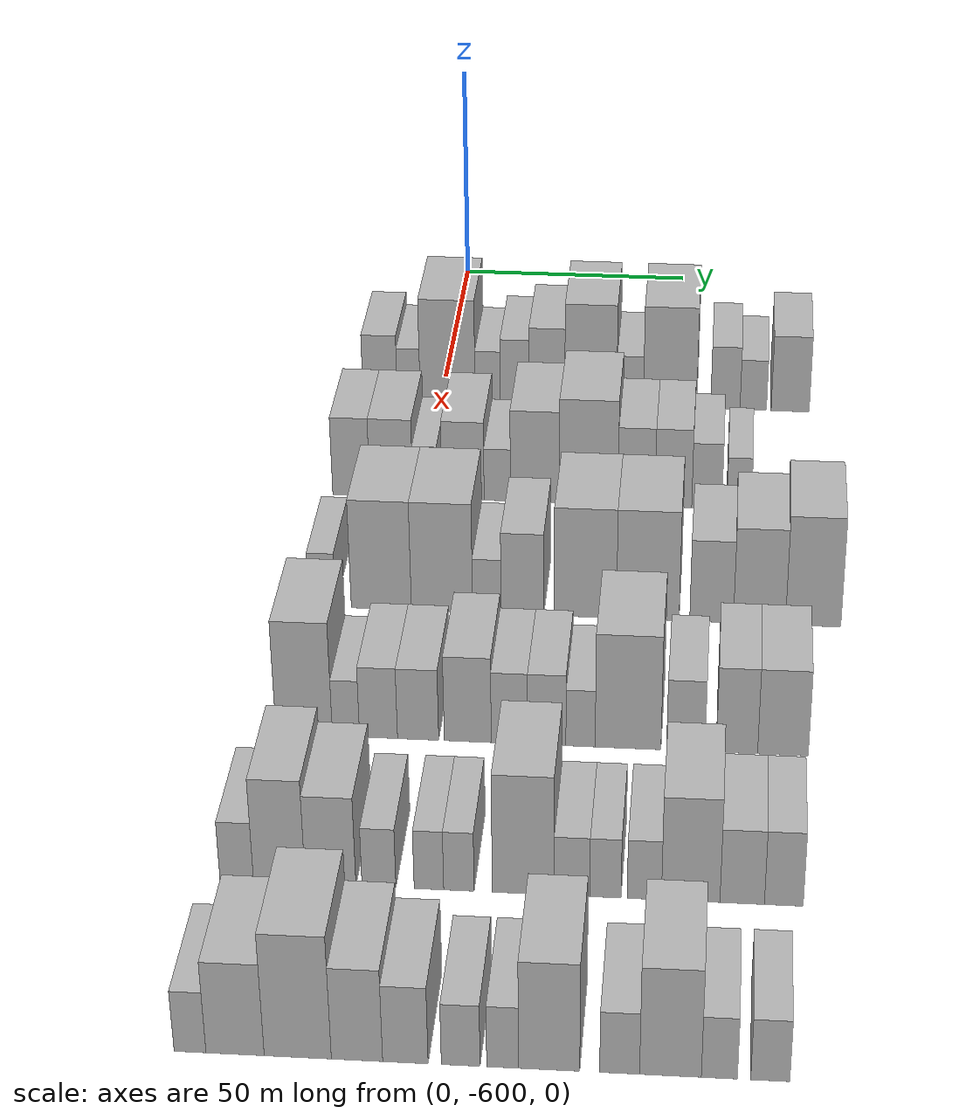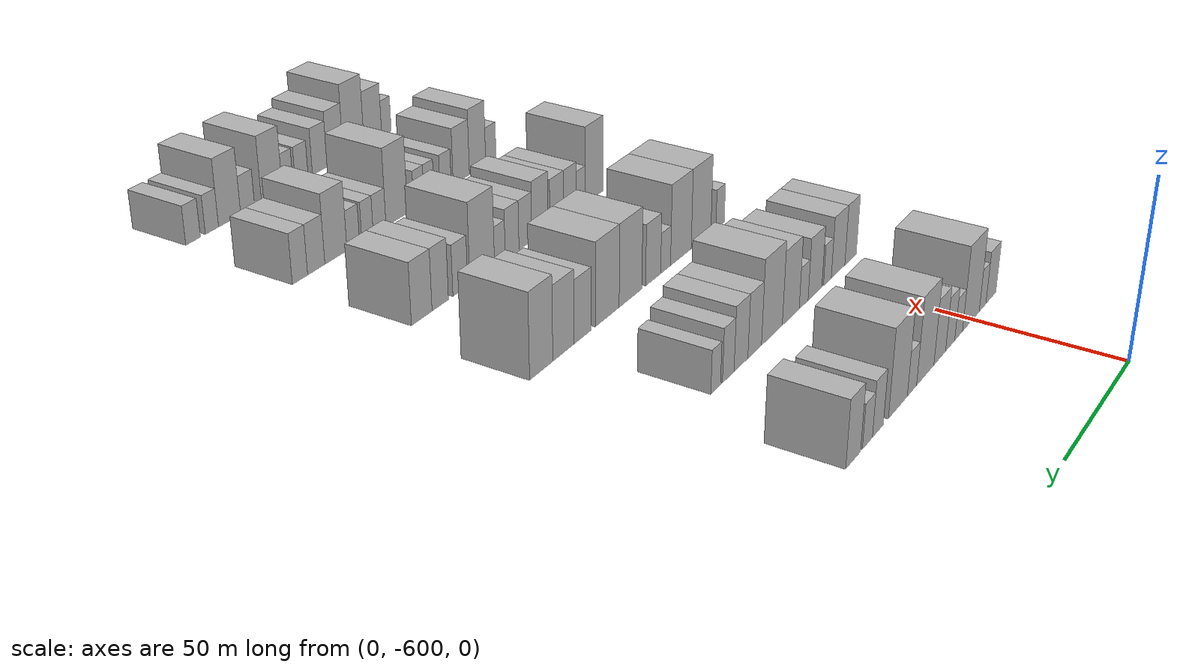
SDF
<sdf version="1.6">
 <world name="default">
  <model name="building_1">
   <static>1</static>
   <pose>50.0000 -613.3078 0 0.000000 0.000000 0.000000</pose>
   <link name="link">
    <pose>0 0 7.50 0 0 0</pose>
    <collision name="collision"><geometry><box><size>20.0000 7.3845 15.0000</size></box></geometry></collision>
    <visual name="visual">
     <cast_shadows>0</cast_shadows>
     <geometry><box><size>20.0000 7.3845 15.0000</size></box></geometry>
     <material>
      <script>
       <uri>model://HANNAS_wall/materials/scripts</uri>
       <uri>model://HANNAS_wall/materials/textures</uri>
       <name>vrc/HANNAS_wall</name>
      </script>
     </material>
    </visual>
   </link>
  </model>
  <model name="building_2">
   <static>1</static>
   <pose>50.0000 -607.1452 0 0.000000 0.000000 0.000000</pose>
   <link name="link">
    <pose>0 0 6.00 0 0 0</pose>
    <collision name="collision"><geometry><box><size>20.0000 4.9407 12.0000</size></box></geometry></collision>
    <visual name="visual">
     <cast_shadows>0</cast_shadows>
     <geometry><box><size>20.0000 4.9407 12.0000</size></box></geometry>
     <material>
      <script>
       <uri>model://HANNAS_wall/materials/scripts</uri>
       <uri>model://HANNAS_wall/materials/textures</uri>
       <name>vrc/HANNAS_wall</name>
      </script>
     </material>
    </visual>
   </link>
  </model>
  <model name="building_3">
   <static>1</static>
   <pose>50.0000 -598.7506 0 0.000000 0.000000 0.000000</pose>
   <link name="link">
    <pose>0 0 12.00 0 0 0</pose>
    <collision name="collision"><geometry><box><size>20.0000 11.8484 24.0000</size></box></geometry></collision>
    <visual name="visual">
     <cast_shadows>0</cast_shadows>
     <geometry><box><size>20.0000 11.8484 24.0000</size></box></geometry>
     <material>
      <script>
       <uri>model://HANNAS_wall/materials/scripts</uri>
       <uri>model://HANNAS_wall/materials/textures</uri>
       <name>vrc/HANNAS_wall</name>
      </script>
     </material>
    </visual>
   </link>
  </model>
  <model name="building_4">
   <static>1</static>
   <pose>50.0000 -590.1358 0 0.000000 0.000000 0.000000</pose>
   <link name="link">
    <pose>0 0 6.00 0 0 0</pose>
    <collision name="collision"><geometry><box><size>20.0000 5.3811 12.0000</size></box></geometry></collision>
    <visual name="visual">
     <cast_shadows>0</cast_shadows>
     <geometry><box><size>20.0000 5.3811 12.0000</size></box></geometry>
     <material>
      <script>
       <uri>model://HANNAS_wall/materials/scripts</uri>
       <uri>model://HANNAS_wall/materials/textures</uri>
       <name>vrc/HANNAS_wall</name>
      </script>
     </material>
    </visual>
   </link>
  </model>
  <model name="building_5">
   <static>1</static>
   <pose>50.0000 -584.3624 0 0.000000 0.000000 0.000000</pose>
   <link name="link">
    <pose>0 0 7.50 0 0 0</pose>
    <collision name="collision"><geometry><box><size>20.0000 6.1656 15.0000</size></box></geometry></collision>
    <visual name="visual">
     <cast_shadows>0</cast_shadows>
     <geometry><box><size>20.0000 6.1656 15.0000</size></box></geometry>
     <material>
      <script>
       <uri>model://HANNAS_wall/materials/scripts</uri>
       <uri>model://HANNAS_wall/materials/textures</uri>
       <name>vrc/HANNAS_wall</name>
      </script>
     </material>
    </visual>
   </link>
  </model>
  <model name="building_6">
   <static>1</static>
   <pose>50.0000 -577.4387 0 0.000000 0.000000 0.000000</pose>
   <link name="link">
    <pose>0 0 9.00 0 0 0</pose>
    <collision name="collision"><geometry><box><size>20.0000 7.6817 18.0000</size></box></geometry></collision>
    <visual name="visual">
     <cast_shadows>0</cast_shadows>
     <geometry><box><size>20.0000 7.6817 18.0000</size></box></geometry>
     <material>
      <script>
       <uri>model://HANNAS_wall/materials/scripts</uri>
       <uri>model://HANNAS_wall/materials/textures</uri>
       <name>vrc/HANNAS_wall</name>
      </script>
     </material>
    </visual>
   </link>
  </model>
  <model name="building_7">
   <static>1</static>
   <pose>50.0000 -568.0621 0 0.000000 0.000000 0.000000</pose>
   <link name="link">
    <pose>0 0 12.00 0 0 0</pose>
    <collision name="collision"><geometry><box><size>20.0000 11.0716 24.0000</size></box></geometry></collision>
    <visual name="visual">
     <cast_shadows>0</cast_shadows>
     <geometry><box><size>20.0000 11.0716 24.0000</size></box></geometry>
     <material>
      <script>
       <uri>model://HANNAS_wall/materials/scripts</uri>
       <uri>model://HANNAS_wall/materials/textures</uri>
       <name>vrc/HANNAS_wall</name>
      </script>
     </material>
    </visual>
   </link>
  </model>
  <model name="building_8">
   <static>1</static>
   <pose>50.0000 -559.6764 0 0.000000 0.000000 0.000000</pose>
   <link name="link">
    <pose>0 0 6.00 0 0 0</pose>
    <collision name="collision"><geometry><box><size>20.0000 5.6997 12.0000</size></box></geometry></collision>
    <visual name="visual">
     <cast_shadows>0</cast_shadows>
     <geometry><box><size>20.0000 5.6997 12.0000</size></box></geometry>
     <material>
      <script>
       <uri>model://HANNAS_wall/materials/scripts</uri>
       <uri>model://HANNAS_wall/materials/textures</uri>
       <name>vrc/HANNAS_wall</name>
      </script>
     </material>
    </visual>
   </link>
  </model>
  <model name="building_9">
   <static>1</static>
   <pose>50.0000 -551.1510 0 0.000000 0.000000 0.000000</pose>
   <link name="link">
    <pose>0 0 12.00 0 0 0</pose>
    <collision name="collision"><geometry><box><size>20.0000 11.3511 24.0000</size></box></geometry></collision>
    <visual name="visual">
     <cast_shadows>0</cast_shadows>
     <geometry><box><size>20.0000 11.3511 24.0000</size></box></geometry>
     <material>
      <script>
       <uri>model://HANNAS_wall/materials/scripts</uri>
       <uri>model://HANNAS_wall/materials/textures</uri>
       <name>vrc/HANNAS_wall</name>
      </script>
     </material>
    </visual>
   </link>
  </model>
  <model name="building_10">
   <static>1</static>
   <pose>50.0000 -539.3572 0 0.000000 0.000000 0.000000</pose>
   <link name="link">
    <pose>0 0 7.50 0 0 0</pose>
    <collision name="collision"><geometry><box><size>20.0000 6.2365 15.0000</size></box></geometry></collision>
    <visual name="visual">
     <cast_shadows>0</cast_shadows>
     <geometry><box><size>20.0000 6.2365 15.0000</size></box></geometry>
     <material>
      <script>
       <uri>model://HANNAS_wall/materials/scripts</uri>
       <uri>model://HANNAS_wall/materials/textures</uri>
       <name>vrc/HANNAS_wall</name>
      </script>
     </material>
    </visual>
   </link>
  </model>
  <model name="building_11">
   <static>1</static>
   <pose>50.0000 -533.4282 0 0.000000 0.000000 0.000000</pose>
   <link name="link">
    <pose>0 0 6.00 0 0 0</pose>
    <collision name="collision"><geometry><box><size>20.0000 5.6216 12.0000</size></box></geometry></collision>
    <visual name="visual">
     <cast_shadows>0</cast_shadows>
     <geometry><box><size>20.0000 5.6216 12.0000</size></box></geometry>
     <material>
      <script>
       <uri>model://HANNAS_wall/materials/scripts</uri>
       <uri>model://HANNAS_wall/materials/textures</uri>
       <name>vrc/HANNAS_wall</name>
      </script>
     </material>
    </visual>
   </link>
  </model>
  <model name="building_12">
   <static>1</static>
   <pose>50.0000 -525.5855 0 0.000000 0.000000 0.000000</pose>
   <link name="link">
    <pose>0 0 9.00 0 0 0</pose>
    <collision name="collision"><geometry><box><size>20.0000 8.0637 18.0000</size></box></geometry></collision>
    <visual name="visual">
     <cast_shadows>0</cast_shadows>
     <geometry><box><size>20.0000 8.0637 18.0000</size></box></geometry>
     <material>
      <script>
       <uri>model://HANNAS_wall/materials/scripts</uri>
       <uri>model://HANNAS_wall/materials/textures</uri>
       <name>vrc/HANNAS_wall</name>
      </script>
     </material>
    </visual>
   </link>
  </model>
  <model name="building_149">
   <static>1</static>
   <pose>90.0000 -614.2257 0 0.000000 0.000000 0.000000</pose>
   <link name="link">
    <pose>0 0 9.00 0 0 0</pose>
    <collision name="collision"><geometry><box><size>20.0000 7.5487 18.0000</size></box></geometry></collision>
    <visual name="visual">
     <cast_shadows>0</cast_shadows>
     <geometry><box><size>20.0000 7.5487 18.0000</size></box></geometry>
     <material>
      <script>
       <uri>model://HANNAS_wall/materials/scripts</uri>
       <uri>model://HANNAS_wall/materials/textures</uri>
       <name>vrc/HANNAS_wall</name>
      </script>
     </material>
    </visual>
   </link>
  </model>
  <model name="building_150">
   <static>1</static>
   <pose>90.0000 -606.0872 0 0.000000 0.000000 0.000000</pose>
   <link name="link">
    <pose>0 0 9.00 0 0 0</pose>
    <collision name="collision"><geometry><box><size>20.0000 8.7281 18.0000</size></box></geometry></collision>
    <visual name="visual">
     <cast_shadows>0</cast_shadows>
     <geometry><box><size>20.0000 8.7281 18.0000</size></box></geometry>
     <material>
      <script>
       <uri>model://HANNAS_wall/materials/scripts</uri>
       <uri>model://HANNAS_wall/materials/textures</uri>
       <name>vrc/HANNAS_wall</name>
      </script>
     </material>
    </visual>
   </link>
  </model>
  <model name="building_151">
   <static>1</static>
   <pose>90.0000 -599.2613 0 0.000000 0.000000 0.000000</pose>
   <link name="link">
    <pose>0 0 6.00 0 0 0</pose>
    <collision name="collision"><geometry><box><size>20.0000 4.9238 12.0000</size></box></geometry></collision>
    <visual name="visual">
     <cast_shadows>0</cast_shadows>
     <geometry><box><size>20.0000 4.9238 12.0000</size></box></geometry>
     <material>
      <script>
       <uri>model://HANNAS_wall/materials/scripts</uri>
       <uri>model://HANNAS_wall/materials/textures</uri>
       <name>vrc/HANNAS_wall</name>
      </script>
     </material>
    </visual>
   </link>
  </model>
  <model name="building_152">
   <static>1</static>
   <pose>90.0000 -591.5511 0 0.000000 0.000000 0.000000</pose>
   <link name="link">
    <pose>0 0 9.00 0 0 0</pose>
    <collision name="collision"><geometry><box><size>20.0000 8.4965 18.0000</size></box></geometry></collision>
    <visual name="visual">
     <cast_shadows>0</cast_shadows>
     <geometry><box><size>20.0000 8.4965 18.0000</size></box></geometry>
     <material>
      <script>
       <uri>model://HANNAS_wall/materials/scripts</uri>
       <uri>model://HANNAS_wall/materials/textures</uri>
       <name>vrc/HANNAS_wall</name>
      </script>
     </material>
    </visual>
   </link>
  </model>
  <model name="building_153">
   <static>1</static>
   <pose>90.0000 -584.6362 0 0.000000 0.000000 0.000000</pose>
   <link name="link">
    <pose>0 0 6.00 0 0 0</pose>
    <collision name="collision"><geometry><box><size>20.0000 5.3332 12.0000</size></box></geometry></collision>
    <visual name="visual">
     <cast_shadows>0</cast_shadows>
     <geometry><box><size>20.0000 5.3332 12.0000</size></box></geometry>
     <material>
      <script>
       <uri>model://HANNAS_wall/materials/scripts</uri>
       <uri>model://HANNAS_wall/materials/textures</uri>
       <name>vrc/HANNAS_wall</name>
      </script>
     </material>
    </visual>
   </link>
  </model>
  <model name="building_154">
   <static>1</static>
   <pose>90.0000 -577.0335 0 0.000000 0.000000 0.000000</pose>
   <link name="link">
    <pose>0 0 10.50 0 0 0</pose>
    <collision name="collision"><geometry><box><size>20.0000 9.8722 21.0000</size></box></geometry></collision>
    <visual name="visual">
     <cast_shadows>0</cast_shadows>
     <geometry><box><size>20.0000 9.8722 21.0000</size></box></geometry>
     <material>
      <script>
       <uri>model://HANNAS_wall/materials/scripts</uri>
       <uri>model://HANNAS_wall/materials/textures</uri>
       <name>vrc/HANNAS_wall</name>
      </script>
     </material>
    </visual>
   </link>
  </model>
  <model name="building_155">
   <static>1</static>
   <pose>90.0000 -566.2191 0 0.000000 0.000000 0.000000</pose>
   <link name="link">
    <pose>0 0 12.00 0 0 0</pose>
    <collision name="collision"><geometry><box><size>20.0000 11.7567 24.0000</size></box></geometry></collision>
    <visual name="visual">
     <cast_shadows>0</cast_shadows>
     <geometry><box><size>20.0000 11.7567 24.0000</size></box></geometry>
     <material>
      <script>
       <uri>model://HANNAS_wall/materials/scripts</uri>
       <uri>model://HANNAS_wall/materials/textures</uri>
       <name>vrc/HANNAS_wall</name>
      </script>
     </material>
    </visual>
   </link>
  </model>
  <model name="building_156">
   <static>1</static>
   <pose>90.0000 -556.6262 0 0.000000 0.000000 0.000000</pose>
   <link name="link">
    <pose>0 0 9.00 0 0 0</pose>
    <collision name="collision"><geometry><box><size>20.0000 7.4292 18.0000</size></box></geometry></collision>
    <visual name="visual">
     <cast_shadows>0</cast_shadows>
     <geometry><box><size>20.0000 7.4292 18.0000</size></box></geometry>
     <material>
      <script>
       <uri>model://HANNAS_wall/materials/scripts</uri>
       <uri>model://HANNAS_wall/materials/textures</uri>
       <name>vrc/HANNAS_wall</name>
      </script>
     </material>
    </visual>
   </link>
  </model>
  <model name="building_157">
   <static>1</static>
   <pose>90.0000 -549.2320 0 0.000000 0.000000 0.000000</pose>
   <link name="link">
    <pose>0 0 9.00 0 0 0</pose>
    <collision name="collision"><geometry><box><size>20.0000 7.3592 18.0000</size></box></geometry></collision>
    <visual name="visual">
     <cast_shadows>0</cast_shadows>
     <geometry><box><size>20.0000 7.3592 18.0000</size></box></geometry>
     <material>
      <script>
       <uri>model://HANNAS_wall/materials/scripts</uri>
       <uri>model://HANNAS_wall/materials/textures</uri>
       <name>vrc/HANNAS_wall</name>
      </script>
     </material>
    </visual>
   </link>
  </model>
  <model name="building_158">
   <static>1</static>
   <pose>90.0000 -542.5500 0 0.000000 0.000000 0.000000</pose>
   <link name="link">
    <pose>0 0 7.50 0 0 0</pose>
    <collision name="collision"><geometry><box><size>20.0000 6.0047 15.0000</size></box></geometry></collision>
    <visual name="visual">
     <cast_shadows>0</cast_shadows>
     <geometry><box><size>20.0000 6.0047 15.0000</size></box></geometry>
     <material>
      <script>
       <uri>model://HANNAS_wall/materials/scripts</uri>
       <uri>model://HANNAS_wall/materials/textures</uri>
       <name>vrc/HANNAS_wall</name>
      </script>
     </material>
    </visual>
   </link>
  </model>
  <model name="building_159">
   <static>1</static>
   <pose>90.0000 -536.1082 0 0.000000 0.000000 0.000000</pose>
   <link name="link">
    <pose>0 0 6.00 0 0 0</pose>
    <collision name="collision"><geometry><box><size>20.0000 4.8790 12.0000</size></box></geometry></collision>
    <visual name="visual">
     <cast_shadows>0</cast_shadows>
     <geometry><box><size>20.0000 4.8790 12.0000</size></box></geometry>
     <material>
      <script>
       <uri>model://HANNAS_wall/materials/scripts</uri>
       <uri>model://HANNAS_wall/materials/textures</uri>
       <name>vrc/HANNAS_wall</name>
      </script>
     </material>
    </visual>
   </link>
  </model>
  <model name="building_281">
   <static>1</static>
   <pose>130.0000 -614.4618 0 0.000000 0.000000 0.000000</pose>
   <link name="link">
    <pose>0 0 6.00 0 0 0</pose>
    <collision name="collision"><geometry><box><size>20.0000 5.0765 12.0000</size></box></geometry></collision>
    <visual name="visual">
     <cast_shadows>0</cast_shadows>
     <geometry><box><size>20.0000 5.0765 12.0000</size></box></geometry>
     <material>
      <script>
       <uri>model://HANNAS_wall/materials/scripts</uri>
       <uri>model://HANNAS_wall/materials/textures</uri>
       <name>vrc/HANNAS_wall</name>
      </script>
     </material>
    </visual>
   </link>
  </model>
  <model name="building_282">
   <static>1</static>
   <pose>130.0000 -603.2040 0 0.000000 0.000000 0.000000</pose>
   <link name="link">
    <pose>0 0 12.00 0 0 0</pose>
    <collision name="collision"><geometry><box><size>20.0000 11.4391 24.0000</size></box></geometry></collision>
    <visual name="visual">
     <cast_shadows>0</cast_shadows>
     <geometry><box><size>20.0000 11.4391 24.0000</size></box></geometry>
     <material>
      <script>
       <uri>model://HANNAS_wall/materials/scripts</uri>
       <uri>model://HANNAS_wall/materials/textures</uri>
       <name>vrc/HANNAS_wall</name>
      </script>
     </material>
    </visual>
   </link>
  </model>
  <model name="building_283">
   <static>1</static>
   <pose>130.0000 -591.6767 0 0.000000 0.000000 0.000000</pose>
   <link name="link">
    <pose>0 0 12.00 0 0 0</pose>
    <collision name="collision"><geometry><box><size>20.0000 11.6155 24.0000</size></box></geometry></collision>
    <visual name="visual">
     <cast_shadows>0</cast_shadows>
     <geometry><box><size>20.0000 11.6155 24.0000</size></box></geometry>
     <material>
      <script>
       <uri>model://HANNAS_wall/materials/scripts</uri>
       <uri>model://HANNAS_wall/materials/textures</uri>
       <name>vrc/HANNAS_wall</name>
      </script>
     </material>
    </visual>
   </link>
  </model>
  <model name="building_284">
   <static>1</static>
   <pose>130.0000 -583.1731 0 0.000000 0.000000 0.000000</pose>
   <link name="link">
    <pose>0 0 6.00 0 0 0</pose>
    <collision name="collision"><geometry><box><size>20.0000 5.3916 12.0000</size></box></geometry></collision>
    <visual name="visual">
     <cast_shadows>0</cast_shadows>
     <geometry><box><size>20.0000 5.3916 12.0000</size></box></geometry>
     <material>
      <script>
       <uri>model://HANNAS_wall/materials/scripts</uri>
       <uri>model://HANNAS_wall/materials/textures</uri>
       <name>vrc/HANNAS_wall</name>
      </script>
     </material>
    </visual>
   </link>
  </model>
  <model name="building_285">
   <static>1</static>
   <pose>130.0000 -576.4538 0 0.000000 0.000000 0.000000</pose>
   <link name="link">
    <pose>0 0 9.00 0 0 0</pose>
    <collision name="collision"><geometry><box><size>20.0000 8.0471 18.0000</size></box></geometry></collision>
    <visual name="visual">
     <cast_shadows>0</cast_shadows>
     <geometry><box><size>20.0000 8.0471 18.0000</size></box></geometry>
     <material>
      <script>
       <uri>model://HANNAS_wall/materials/scripts</uri>
       <uri>model://HANNAS_wall/materials/textures</uri>
       <name>vrc/HANNAS_wall</name>
      </script>
     </material>
    </visual>
   </link>
  </model>
  <model name="building_286">
   <static>1</static>
   <pose>130.0000 -564.5777 0 0.000000 0.000000 0.000000</pose>
   <link name="link">
    <pose>0 0 12.00 0 0 0</pose>
    <collision name="collision"><geometry><box><size>20.0000 11.7050 24.0000</size></box></geometry></collision>
    <visual name="visual">
     <cast_shadows>0</cast_shadows>
     <geometry><box><size>20.0000 11.7050 24.0000</size></box></geometry>
     <material>
      <script>
       <uri>model://HANNAS_wall/materials/scripts</uri>
       <uri>model://HANNAS_wall/materials/textures</uri>
       <name>vrc/HANNAS_wall</name>
      </script>
     </material>
    </visual>
   </link>
  </model>
  <model name="building_287">
   <static>1</static>
   <pose>130.0000 -552.8426 0 0.000000 0.000000 0.000000</pose>
   <link name="link">
    <pose>0 0 12.00 0 0 0</pose>
    <collision name="collision"><geometry><box><size>20.0000 11.7652 24.0000</size></box></geometry></collision>
    <visual name="visual">
     <cast_shadows>0</cast_shadows>
     <geometry><box><size>20.0000 11.7652 24.0000</size></box></geometry>
     <material>
      <script>
       <uri>model://HANNAS_wall/materials/scripts</uri>
       <uri>model://HANNAS_wall/materials/textures</uri>
       <name>vrc/HANNAS_wall</name>
      </script>
     </material>
    </visual>
   </link>
  </model>
  <model name="building_288">
   <static>1</static>
   <pose>130.0000 -540.8734 0 0.000000 0.000000 0.000000</pose>
   <link name="link">
    <pose>0 0 9.00 0 0 0</pose>
    <collision name="collision"><geometry><box><size>20.0000 8.1732 18.0000</size></box></geometry></collision>
    <visual name="visual">
     <cast_shadows>0</cast_shadows>
     <geometry><box><size>20.0000 8.1732 18.0000</size></box></geometry>
     <material>
      <script>
       <uri>model://HANNAS_wall/materials/scripts</uri>
       <uri>model://HANNAS_wall/materials/textures</uri>
       <name>vrc/HANNAS_wall</name>
      </script>
     </material>
    </visual>
   </link>
  </model>
  <model name="building_289">
   <static>1</static>
   <pose>130.0000 -531.9129 0 0.000000 0.000000 0.000000</pose>
   <link name="link">
    <pose>0 0 10.50 0 0 0</pose>
    <collision name="collision"><geometry><box><size>20.0000 9.7479 21.0000</size></box></geometry></collision>
    <visual name="visual">
     <cast_shadows>0</cast_shadows>
     <geometry><box><size>20.0000 9.7479 21.0000</size></box></geometry>
     <material>
      <script>
       <uri>model://HANNAS_wall/materials/scripts</uri>
       <uri>model://HANNAS_wall/materials/textures</uri>
       <name>vrc/HANNAS_wall</name>
      </script>
     </material>
    </visual>
   </link>
  </model>
  <model name="building_290">
   <static>1</static>
   <pose>130.0000 -521.8760 0 0.000000 0.000000 0.000000</pose>
   <link name="link">
    <pose>0 0 12.00 0 0 0</pose>
    <collision name="collision"><geometry><box><size>20.0000 10.3259 24.0000</size></box></geometry></collision>
    <visual name="visual">
     <cast_shadows>0</cast_shadows>
     <geometry><box><size>20.0000 10.3259 24.0000</size></box></geometry>
     <material>
      <script>
       <uri>model://HANNAS_wall/materials/scripts</uri>
       <uri>model://HANNAS_wall/materials/textures</uri>
       <name>vrc/HANNAS_wall</name>
      </script>
     </material>
    </visual>
   </link>
  </model>
  <model name="building_419">
   <static>1</static>
   <pose>170.0000 -611.9860 0 0.000000 0.000000 0.000000</pose>
   <link name="link">
    <pose>0 0 12.00 0 0 0</pose>
    <collision name="collision"><geometry><box><size>20.0000 10.0280 24.0000</size></box></geometry></collision>
    <visual name="visual">
     <cast_shadows>0</cast_shadows>
     <geometry><box><size>20.0000 10.0280 24.0000</size></box></geometry>
     <material>
      <script>
       <uri>model://HANNAS_wall/materials/scripts</uri>
       <uri>model://HANNAS_wall/materials/textures</uri>
       <name>vrc/HANNAS_wall</name>
      </script>
     </material>
    </visual>
   </link>
  </model>
  <model name="building_420">
   <static>1</static>
   <pose>170.0000 -604.5622 0 0.000000 0.000000 0.000000</pose>
   <link name="link">
    <pose>0 0 6.00 0 0 0</pose>
    <collision name="collision"><geometry><box><size>20.0000 4.8196 12.0000</size></box></geometry></collision>
    <visual name="visual">
     <cast_shadows>0</cast_shadows>
     <geometry><box><size>20.0000 4.8196 12.0000</size></box></geometry>
     <material>
      <script>
       <uri>model://HANNAS_wall/materials/scripts</uri>
       <uri>model://HANNAS_wall/materials/textures</uri>
       <name>vrc/HANNAS_wall</name>
      </script>
     </material>
    </visual>
   </link>
  </model>
  <model name="building_421">
   <static>1</static>
   <pose>170.0000 -598.7868 0 0.000000 0.000000 0.000000</pose>
   <link name="link">
    <pose>0 0 7.50 0 0 0</pose>
    <collision name="collision"><geometry><box><size>20.0000 6.7311 15.0000</size></box></geometry></collision>
    <visual name="visual">
     <cast_shadows>0</cast_shadows>
     <geometry><box><size>20.0000 6.7311 15.0000</size></box></geometry>
     <material>
      <script>
       <uri>model://HANNAS_wall/materials/scripts</uri>
       <uri>model://HANNAS_wall/materials/textures</uri>
       <name>vrc/HANNAS_wall</name>
      </script>
     </material>
    </visual>
   </link>
  </model>
  <model name="building_422">
   <static>1</static>
   <pose>170.0000 -591.7736 0 0.000000 0.000000 0.000000</pose>
   <link name="link">
    <pose>0 0 7.50 0 0 0</pose>
    <collision name="collision"><geometry><box><size>20.0000 7.2953 15.0000</size></box></geometry></collision>
    <visual name="visual">
     <cast_shadows>0</cast_shadows>
     <geometry><box><size>20.0000 7.2953 15.0000</size></box></geometry>
     <material>
      <script>
       <uri>model://HANNAS_wall/materials/scripts</uri>
       <uri>model://HANNAS_wall/materials/textures</uri>
       <name>vrc/HANNAS_wall</name>
      </script>
     </material>
    </visual>
   </link>
  </model>
  <model name="building_423">
   <static>1</static>
   <pose>170.0000 -582.9751 0 0.000000 0.000000 0.000000</pose>
   <link name="link">
    <pose>0 0 9.00 0 0 0</pose>
    <collision name="collision"><geometry><box><size>20.0000 8.3016 18.0000</size></box></geometry></collision>
    <visual name="visual">
     <cast_shadows>0</cast_shadows>
     <geometry><box><size>20.0000 8.3016 18.0000</size></box></geometry>
     <material>
      <script>
       <uri>model://HANNAS_wall/materials/scripts</uri>
       <uri>model://HANNAS_wall/materials/textures</uri>
       <name>vrc/HANNAS_wall</name>
      </script>
     </material>
    </visual>
   </link>
  </model>
  <model name="building_424">
   <static>1</static>
   <pose>170.0000 -575.6235 0 0.000000 0.000000 0.000000</pose>
   <link name="link">
    <pose>0 0 7.50 0 0 0</pose>
    <collision name="collision"><geometry><box><size>20.0000 6.4017 15.0000</size></box></geometry></collision>
    <visual name="visual">
     <cast_shadows>0</cast_shadows>
     <geometry><box><size>20.0000 6.4017 15.0000</size></box></geometry>
     <material>
      <script>
       <uri>model://HANNAS_wall/materials/scripts</uri>
       <uri>model://HANNAS_wall/materials/textures</uri>
       <name>vrc/HANNAS_wall</name>
      </script>
     </material>
    </visual>
   </link>
  </model>
  <model name="building_425">
   <static>1</static>
   <pose>170.0000 -569.0584 0 0.000000 0.000000 0.000000</pose>
   <link name="link">
    <pose>0 0 7.50 0 0 0</pose>
    <collision name="collision"><geometry><box><size>20.0000 6.7285 15.0000</size></box></geometry></collision>
    <visual name="visual">
     <cast_shadows>0</cast_shadows>
     <geometry><box><size>20.0000 6.7285 15.0000</size></box></geometry>
     <material>
      <script>
       <uri>model://HANNAS_wall/materials/scripts</uri>
       <uri>model://HANNAS_wall/materials/textures</uri>
       <name>vrc/HANNAS_wall</name>
      </script>
     </material>
    </visual>
   </link>
  </model>
  <model name="building_426">
   <static>1</static>
   <pose>170.0000 -563.1202 0 0.000000 0.000000 0.000000</pose>
   <link name="link">
    <pose>0 0 6.00 0 0 0</pose>
    <collision name="collision"><geometry><box><size>20.0000 5.1479 12.0000</size></box></geometry></collision>
    <visual name="visual">
     <cast_shadows>0</cast_shadows>
     <geometry><box><size>20.0000 5.1479 12.0000</size></box></geometry>
     <material>
      <script>
       <uri>model://HANNAS_wall/materials/scripts</uri>
       <uri>model://HANNAS_wall/materials/textures</uri>
       <name>vrc/HANNAS_wall</name>
      </script>
     </material>
    </visual>
   </link>
  </model>
  <model name="building_427">
   <static>1</static>
   <pose>170.0000 -554.7796 0 0.000000 0.000000 0.000000</pose>
   <link name="link">
    <pose>0 0 12.00 0 0 0</pose>
    <collision name="collision"><geometry><box><size>20.0000 11.5332 24.0000</size></box></geometry></collision>
    <visual name="visual">
     <cast_shadows>0</cast_shadows>
     <geometry><box><size>20.0000 11.5332 24.0000</size></box></geometry>
     <material>
      <script>
       <uri>model://HANNAS_wall/materials/scripts</uri>
       <uri>model://HANNAS_wall/materials/textures</uri>
       <name>vrc/HANNAS_wall</name>
      </script>
     </material>
    </visual>
   </link>
  </model>
  <model name="building_428">
   <static>1</static>
   <pose>170.0000 -544.6679 0 0.000000 0.000000 0.000000</pose>
   <link name="link">
    <pose>0 0 7.50 0 0 0</pose>
    <collision name="collision"><geometry><box><size>20.0000 6.6903 15.0000</size></box></geometry></collision>
    <visual name="visual">
     <cast_shadows>0</cast_shadows>
     <geometry><box><size>20.0000 6.6903 15.0000</size></box></geometry>
     <material>
      <script>
       <uri>model://HANNAS_wall/materials/scripts</uri>
       <uri>model://HANNAS_wall/materials/textures</uri>
       <name>vrc/HANNAS_wall</name>
      </script>
     </material>
    </visual>
   </link>
  </model>
  <model name="building_429">
   <static>1</static>
   <pose>170.0000 -535.7209 0 0.000000 0.000000 0.000000</pose>
   <link name="link">
    <pose>0 0 9.00 0 0 0</pose>
    <collision name="collision"><geometry><box><size>20.0000 7.2038 18.0000</size></box></geometry></collision>
    <visual name="visual">
     <cast_shadows>0</cast_shadows>
     <geometry><box><size>20.0000 7.2038 18.0000</size></box></geometry>
     <material>
      <script>
       <uri>model://HANNAS_wall/materials/scripts</uri>
       <uri>model://HANNAS_wall/materials/textures</uri>
       <name>vrc/HANNAS_wall</name>
      </script>
     </material>
    </visual>
   </link>
  </model>
  <model name="building_430">
   <static>1</static>
   <pose>170.0000 -527.7082 0 0.000000 0.000000 0.000000</pose>
   <link name="link">
    <pose>0 0 9.00 0 0 0</pose>
    <collision name="collision"><geometry><box><size>20.0000 8.8215 18.0000</size></box></geometry></collision>
    <visual name="visual">
     <cast_shadows>0</cast_shadows>
     <geometry><box><size>20.0000 8.8215 18.0000</size></box></geometry>
     <material>
      <script>
       <uri>model://HANNAS_wall/materials/scripts</uri>
       <uri>model://HANNAS_wall/materials/textures</uri>
       <name>vrc/HANNAS_wall</name>
      </script>
     </material>
    </visual>
   </link>
  </model>
  <model name="building_562">
   <static>1</static>
   <pose>210.0000 -617.2275 0 0.000000 0.000000 0.000000</pose>
   <link name="link">
    <pose>0 0 6.00 0 0 0</pose>
    <collision name="collision"><geometry><box><size>20.0000 5.5449 12.0000</size></box></geometry></collision>
    <visual name="visual">
     <cast_shadows>0</cast_shadows>
     <geometry><box><size>20.0000 5.5449 12.0000</size></box></geometry>
     <material>
      <script>
       <uri>model://HANNAS_wall/materials/scripts</uri>
       <uri>model://HANNAS_wall/materials/textures</uri>
       <name>vrc/HANNAS_wall</name>
      </script>
     </material>
    </visual>
   </link>
  </model>
  <model name="building_563">
   <static>1</static>
   <pose>210.0000 -610.1672 0 0.000000 0.000000 0.000000</pose>
   <link name="link">
    <pose>0 0 10.50 0 0 0</pose>
    <collision name="collision"><geometry><box><size>20.0000 8.5757 21.0000</size></box></geometry></collision>
    <visual name="visual">
     <cast_shadows>0</cast_shadows>
     <geometry><box><size>20.0000 8.5757 21.0000</size></box></geometry>
     <material>
      <script>
       <uri>model://HANNAS_wall/materials/scripts</uri>
       <uri>model://HANNAS_wall/materials/textures</uri>
       <name>vrc/HANNAS_wall</name>
      </script>
     </material>
    </visual>
   </link>
  </model>
  <model name="building_564">
   <static>1</static>
   <pose>210.0000 -601.7111 0 0.000000 0.000000 0.000000</pose>
   <link name="link">
    <pose>0 0 9.00 0 0 0</pose>
    <collision name="collision"><geometry><box><size>20.0000 8.3366 18.0000</size></box></geometry></collision>
    <visual name="visual">
     <cast_shadows>0</cast_shadows>
     <geometry><box><size>20.0000 8.3366 18.0000</size></box></geometry>
     <material>
      <script>
       <uri>model://HANNAS_wall/materials/scripts</uri>
       <uri>model://HANNAS_wall/materials/textures</uri>
       <name>vrc/HANNAS_wall</name>
      </script>
     </material>
    </visual>
   </link>
  </model>
  <model name="building_565">
   <static>1</static>
   <pose>210.0000 -593.7520 0 0.000000 0.000000 0.000000</pose>
   <link name="link">
    <pose>0 0 6.00 0 0 0</pose>
    <collision name="collision"><geometry><box><size>20.0000 5.5816 12.0000</size></box></geometry></collision>
    <visual name="visual">
     <cast_shadows>0</cast_shadows>
     <geometry><box><size>20.0000 5.5816 12.0000</size></box></geometry>
     <material>
      <script>
       <uri>model://HANNAS_wall/materials/scripts</uri>
       <uri>model://HANNAS_wall/materials/textures</uri>
       <name>vrc/HANNAS_wall</name>
      </script>
     </material>
    </visual>
   </link>
  </model>
  <model name="building_566">
   <static>1</static>
   <pose>210.0000 -585.5387 0 0.000000 0.000000 0.000000</pose>
   <link name="link">
    <pose>0 0 6.00 0 0 0</pose>
    <collision name="collision"><geometry><box><size>20.0000 4.8450 12.0000</size></box></geometry></collision>
    <visual name="visual">
     <cast_shadows>0</cast_shadows>
     <geometry><box><size>20.0000 4.8450 12.0000</size></box></geometry>
     <material>
      <script>
       <uri>model://HANNAS_wall/materials/scripts</uri>
       <uri>model://HANNAS_wall/materials/textures</uri>
       <name>vrc/HANNAS_wall</name>
      </script>
     </material>
    </visual>
   </link>
  </model>
  <model name="building_567">
   <static>1</static>
   <pose>210.0000 -580.6213 0 0.000000 0.000000 0.000000</pose>
   <link name="link">
    <pose>0 0 6.00 0 0 0</pose>
    <collision name="collision"><geometry><box><size>20.0000 4.9898 12.0000</size></box></geometry></collision>
    <visual name="visual">
     <cast_shadows>0</cast_shadows>
     <geometry><box><size>20.0000 4.9898 12.0000</size></box></geometry>
     <material>
      <script>
       <uri>model://HANNAS_wall/materials/scripts</uri>
       <uri>model://HANNAS_wall/materials/textures</uri>
       <name>vrc/HANNAS_wall</name>
      </script>
     </material>
    </visual>
   </link>
  </model>
  <model name="building_568">
   <static>1</static>
   <pose>210.0000 -570.0926 0 0.000000 0.000000 0.000000</pose>
   <link name="link">
    <pose>0 0 12.00 0 0 0</pose>
    <collision name="collision"><geometry><box><size>20.0000 10.0676 24.0000</size></box></geometry></collision>
    <visual name="visual">
     <cast_shadows>0</cast_shadows>
     <geometry><box><size>20.0000 10.0676 24.0000</size></box></geometry>
     <material>
      <script>
       <uri>model://HANNAS_wall/materials/scripts</uri>
       <uri>model://HANNAS_wall/materials/textures</uri>
       <name>vrc/HANNAS_wall</name>
      </script>
     </material>
    </visual>
   </link>
  </model>
  <model name="building_569">
   <static>1</static>
   <pose>210.0000 -562.1468 0 0.000000 0.000000 0.000000</pose>
   <link name="link">
    <pose>0 0 6.00 0 0 0</pose>
    <collision name="collision"><geometry><box><size>20.0000 5.8241 12.0000</size></box></geometry></collision>
    <visual name="visual">
     <cast_shadows>0</cast_shadows>
     <geometry><box><size>20.0000 5.8241 12.0000</size></box></geometry>
     <material>
      <script>
       <uri>model://HANNAS_wall/materials/scripts</uri>
       <uri>model://HANNAS_wall/materials/textures</uri>
       <name>vrc/HANNAS_wall</name>
      </script>
     </material>
    </visual>
   </link>
  </model>
  <model name="building_570">
   <static>1</static>
   <pose>210.0000 -556.6873 0 0.000000 0.000000 0.000000</pose>
   <link name="link">
    <pose>0 0 6.00 0 0 0</pose>
    <collision name="collision"><geometry><box><size>20.0000 5.0948 12.0000</size></box></geometry></collision>
    <visual name="visual">
     <cast_shadows>0</cast_shadows>
     <geometry><box><size>20.0000 5.0948 12.0000</size></box></geometry>
     <material>
      <script>
       <uri>model://HANNAS_wall/materials/scripts</uri>
       <uri>model://HANNAS_wall/materials/textures</uri>
       <name>vrc/HANNAS_wall</name>
      </script>
     </material>
    </visual>
   </link>
  </model>
  <model name="building_571">
   <static>1</static>
   <pose>210.0000 -550.3607 0 0.000000 0.000000 0.000000</pose>
   <link name="link">
    <pose>0 0 6.00 0 0 0</pose>
    <collision name="collision"><geometry><box><size>20.0000 5.5584 12.0000</size></box></geometry></collision>
    <visual name="visual">
     <cast_shadows>0</cast_shadows>
     <geometry><box><size>20.0000 5.5584 12.0000</size></box></geometry>
     <material>
      <script>
       <uri>model://HANNAS_wall/materials/scripts</uri>
       <uri>model://HANNAS_wall/materials/textures</uri>
       <name>vrc/HANNAS_wall</name>
      </script>
     </material>
    </visual>
   </link>
  </model>
  <model name="building_572">
   <static>1</static>
   <pose>210.0000 -542.8347 0 0.000000 0.000000 0.000000</pose>
   <link name="link">
    <pose>0 0 10.50 0 0 0</pose>
    <collision name="collision"><geometry><box><size>20.0000 9.4935 21.0000</size></box></geometry></collision>
    <visual name="visual">
     <cast_shadows>0</cast_shadows>
     <geometry><box><size>20.0000 9.4935 21.0000</size></box></geometry>
     <material>
      <script>
       <uri>model://HANNAS_wall/materials/scripts</uri>
       <uri>model://HANNAS_wall/materials/textures</uri>
       <name>vrc/HANNAS_wall</name>
      </script>
     </material>
    </visual>
   </link>
  </model>
  <model name="building_573">
   <static>1</static>
   <pose>210.0000 -534.4861 0 0.000000 0.000000 0.000000</pose>
   <link name="link">
    <pose>0 0 7.50 0 0 0</pose>
    <collision name="collision"><geometry><box><size>20.0000 7.2037 15.0000</size></box></geometry></collision>
    <visual name="visual">
     <cast_shadows>0</cast_shadows>
     <geometry><box><size>20.0000 7.2037 15.0000</size></box></geometry>
     <material>
      <script>
       <uri>model://HANNAS_wall/materials/scripts</uri>
       <uri>model://HANNAS_wall/materials/textures</uri>
       <name>vrc/HANNAS_wall</name>
      </script>
     </material>
    </visual>
   </link>
  </model>
  <model name="building_574">
   <static>1</static>
   <pose>210.0000 -527.7561 0 0.000000 0.000000 0.000000</pose>
   <link name="link">
    <pose>0 0 7.50 0 0 0</pose>
    <collision name="collision"><geometry><box><size>20.0000 6.2564 15.0000</size></box></geometry></collision>
    <visual name="visual">
     <cast_shadows>0</cast_shadows>
     <geometry><box><size>20.0000 6.2564 15.0000</size></box></geometry>
     <material>
      <script>
       <uri>model://HANNAS_wall/materials/scripts</uri>
       <uri>model://HANNAS_wall/materials/textures</uri>
       <name>vrc/HANNAS_wall</name>
      </script>
     </material>
    </visual>
   </link>
  </model>
  <model name="building_703">
   <static>1</static>
   <pose>250.0000 -617.5644 0 0.000000 0.000000 0.000000</pose>
   <link name="link">
    <pose>0 0 6.00 0 0 0</pose>
    <collision name="collision"><geometry><box><size>20.0000 4.8712 12.0000</size></box></geometry></collision>
    <visual name="visual">
     <cast_shadows>0</cast_shadows>
     <geometry><box><size>20.0000 4.8712 12.0000</size></box></geometry>
     <material>
      <script>
       <uri>model://HANNAS_wall/materials/scripts</uri>
       <uri>model://HANNAS_wall/materials/textures</uri>
       <name>vrc/HANNAS_wall</name>
      </script>
     </material>
    </visual>
   </link>
  </model>
  <model name="building_704">
   <static>1</static>
   <pose>250.0000 -610.6867 0 0.000000 0.000000 0.000000</pose>
   <link name="link">
    <pose>0 0 9.00 0 0 0</pose>
    <collision name="collision"><geometry><box><size>20.0000 8.8843 18.0000</size></box></geometry></collision>
    <visual name="visual">
     <cast_shadows>0</cast_shadows>
     <geometry><box><size>20.0000 8.8843 18.0000</size></box></geometry>
     <material>
      <script>
       <uri>model://HANNAS_wall/materials/scripts</uri>
       <uri>model://HANNAS_wall/materials/textures</uri>
       <name>vrc/HANNAS_wall</name>
      </script>
     </material>
    </visual>
   </link>
  </model>
  <model name="building_705">
   <static>1</static>
   <pose>250.0000 -601.1361 0 0.000000 0.000000 0.000000</pose>
   <link name="link">
    <pose>0 0 12.00 0 0 0</pose>
    <collision name="collision"><geometry><box><size>20.0000 10.2169 24.0000</size></box></geometry></collision>
    <visual name="visual">
     <cast_shadows>0</cast_shadows>
     <geometry><box><size>20.0000 10.2169 24.0000</size></box></geometry>
     <material>
      <script>
       <uri>model://HANNAS_wall/materials/scripts</uri>
       <uri>model://HANNAS_wall/materials/textures</uri>
       <name>vrc/HANNAS_wall</name>
      </script>
     </material>
    </visual>
   </link>
  </model>
  <model name="building_706">
   <static>1</static>
   <pose>250.0000 -592.1325 0 0.000000 0.000000 0.000000</pose>
   <link name="link">
    <pose>0 0 9.00 0 0 0</pose>
    <collision name="collision"><geometry><box><size>20.0000 7.7903 18.0000</size></box></geometry></collision>
    <visual name="visual">
     <cast_shadows>0</cast_shadows>
     <geometry><box><size>20.0000 7.7903 18.0000</size></box></geometry>
     <material>
      <script>
       <uri>model://HANNAS_wall/materials/scripts</uri>
       <uri>model://HANNAS_wall/materials/textures</uri>
       <name>vrc/HANNAS_wall</name>
      </script>
     </material>
    </visual>
   </link>
  </model>
  <model name="building_707">
   <static>1</static>
   <pose>250.0000 -584.7934 0 0.000000 0.000000 0.000000</pose>
   <link name="link">
    <pose>0 0 7.50 0 0 0</pose>
    <collision name="collision"><geometry><box><size>20.0000 6.8878 15.0000</size></box></geometry></collision>
    <visual name="visual">
     <cast_shadows>0</cast_shadows>
     <geometry><box><size>20.0000 6.8878 15.0000</size></box></geometry>
     <material>
      <script>
       <uri>model://HANNAS_wall/materials/scripts</uri>
       <uri>model://HANNAS_wall/materials/textures</uri>
       <name>vrc/HANNAS_wall</name>
      </script>
     </material>
    </visual>
   </link>
  </model>
  <model name="building_708">
   <static>1</static>
   <pose>250.0000 -576.4227 0 0.000000 0.000000 0.000000</pose>
   <link name="link">
    <pose>0 0 6.00 0 0 0</pose>
    <collision name="collision"><geometry><box><size>20.0000 5.8537 12.0000</size></box></geometry></collision>
    <visual name="visual">
     <cast_shadows>0</cast_shadows>
     <geometry><box><size>20.0000 5.8537 12.0000</size></box></geometry>
     <material>
      <script>
       <uri>model://HANNAS_wall/materials/scripts</uri>
       <uri>model://HANNAS_wall/materials/textures</uri>
       <name>vrc/HANNAS_wall</name>
      </script>
     </material>
    </visual>
   </link>
  </model>
  <model name="building_709">
   <static>1</static>
   <pose>250.0000 -570.0913 0 0.000000 0.000000 0.000000</pose>
   <link name="link">
    <pose>0 0 6.00 0 0 0</pose>
    <collision name="collision"><geometry><box><size>20.0000 4.8092 12.0000</size></box></geometry></collision>
    <visual name="visual">
     <cast_shadows>0</cast_shadows>
     <geometry><box><size>20.0000 4.8092 12.0000</size></box></geometry>
     <material>
      <script>
       <uri>model://HANNAS_wall/materials/scripts</uri>
       <uri>model://HANNAS_wall/materials/textures</uri>
       <name>vrc/HANNAS_wall</name>
      </script>
     </material>
    </visual>
   </link>
  </model>
  <model name="building_710">
   <static>1</static>
   <pose>250.0000 -563.0865 0 0.000000 0.000000 0.000000</pose>
   <link name="link">
    <pose>0 0 10.50 0 0 0</pose>
    <collision name="collision"><geometry><box><size>20.0000 9.2004 21.0000</size></box></geometry></collision>
    <visual name="visual">
     <cast_shadows>0</cast_shadows>
     <geometry><box><size>20.0000 9.2004 21.0000</size></box></geometry>
     <material>
      <script>
       <uri>model://HANNAS_wall/materials/scripts</uri>
       <uri>model://HANNAS_wall/materials/textures</uri>
       <name>vrc/HANNAS_wall</name>
      </script>
     </material>
    </visual>
   </link>
  </model>
  <model name="building_711">
   <static>1</static>
   <pose>250.0000 -552.4972 0 0.000000 0.000000 0.000000</pose>
   <link name="link">
    <pose>0 0 6.00 0 0 0</pose>
    <collision name="collision"><geometry><box><size>20.0000 5.9781 12.0000</size></box></geometry></collision>
    <visual name="visual">
     <cast_shadows>0</cast_shadows>
     <geometry><box><size>20.0000 5.9781 12.0000</size></box></geometry>
     <material>
      <script>
       <uri>model://HANNAS_wall/materials/scripts</uri>
       <uri>model://HANNAS_wall/materials/textures</uri>
       <name>vrc/HANNAS_wall</name>
      </script>
     </material>
    </visual>
   </link>
  </model>
  <model name="building_712">
   <static>1</static>
   <pose>250.0000 -544.8862 0 0.000000 0.000000 0.000000</pose>
   <link name="link">
    <pose>0 0 10.50 0 0 0</pose>
    <collision name="collision"><geometry><box><size>20.0000 9.2439 21.0000</size></box></geometry></collision>
    <visual name="visual">
     <cast_shadows>0</cast_shadows>
     <geometry><box><size>20.0000 9.2439 21.0000</size></box></geometry>
     <material>
      <script>
       <uri>model://HANNAS_wall/materials/scripts</uri>
       <uri>model://HANNAS_wall/materials/textures</uri>
       <name>vrc/HANNAS_wall</name>
      </script>
     </material>
    </visual>
   </link>
  </model>
  <model name="building_713">
   <static>1</static>
   <pose>250.0000 -537.5733 0 0.000000 0.000000 0.000000</pose>
   <link name="link">
    <pose>0 0 6.00 0 0 0</pose>
    <collision name="collision"><geometry><box><size>20.0000 5.3819 12.0000</size></box></geometry></collision>
    <visual name="visual">
     <cast_shadows>0</cast_shadows>
     <geometry><box><size>20.0000 5.3819 12.0000</size></box></geometry>
     <material>
      <script>
       <uri>model://HANNAS_wall/materials/scripts</uri>
       <uri>model://HANNAS_wall/materials/textures</uri>
       <name>vrc/HANNAS_wall</name>
      </script>
     </material>
    </visual>
   </link>
  </model>
  <model name="building_714">
   <static>1</static>
   <pose>250.0000 -529.9745 0 0.000000 0.000000 0.000000</pose>
   <link name="link">
    <pose>0 0 6.00 0 0 0</pose>
    <collision name="collision"><geometry><box><size>20.0000 5.8157 12.0000</size></box></geometry></collision>
    <visual name="visual">
     <cast_shadows>0</cast_shadows>
     <geometry><box><size>20.0000 5.8157 12.0000</size></box></geometry>
     <material>
      <script>
       <uri>model://HANNAS_wall/materials/scripts</uri>
       <uri>model://HANNAS_wall/materials/textures</uri>
       <name>vrc/HANNAS_wall</name>
      </script>
     </material>
    </visual>
   </link>
  </model>
 </world>
</sdf>
